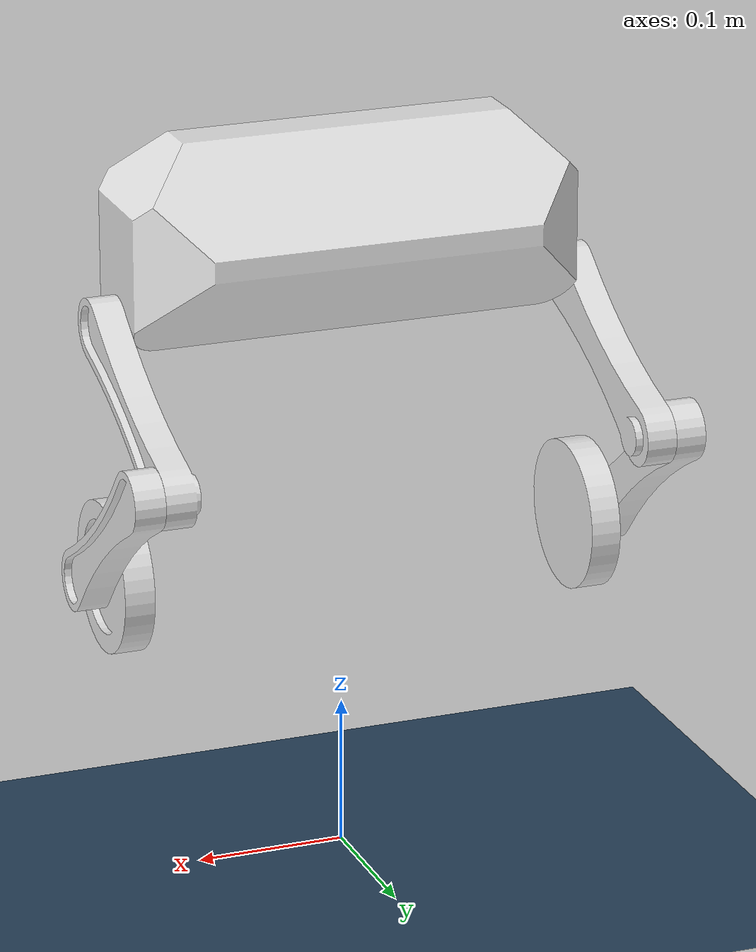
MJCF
<?xml version="1.0" encoding="utf-8"?>
<mujoco model="Bipedal">
  <compiler meshdir="." angle="radian"/>
  <option gravity="0 0 -9.81" timestep="0.002"/>
  <asset>
    <texture name="grid" type="2d" builtin="checker" rgb1=".1 .2 .3"
     rgb2=".2 .3 .4" width="300" height="300"/>
    <material name="grid" texture="grid" texrepeat="8 8" reflectance=".2"/>
    <mesh name="base_link" file="../meshes/base_link.STL"/>
    <mesh name="Link_11" file="../meshes/Link_11.STL"/>
    <mesh name="Link_12" file="../meshes/Link_12.STL"/>
    <mesh name="Wheel_1" file="../meshes/Wheel_1.STL"/>
    <mesh name="Link_21" file="../meshes/Link_21.STL"/>
    <mesh name="Link_22" file="../meshes/Link_22.STL"/>
    <mesh name="Wheel_2" file="../meshes/Wheel_2.STL"/>
  </asset>
  <worldbody>
    <light name="top" pos="0 0 1"/>
    <geom size="100 100 100" type="plane" material="grid"/>
    <!-- Spawn the bot 10 cm above the ground; only the wheels may contact it. -->
    <body name="base_link" pos="0 0 0.50" euler="1.5708 0 0">
      <freejoint name="root_freejoint"/>
      <inertial mass="3.63817086802306" pos="-1.64012214920461E-08 -0.0680186409737764 -1.39560096812374E-09" diaginertia="0.00737499625534443 0.0285025917062785 0.0281335662782507"/>
      <geom name="base_link_visual" type="mesh" mesh="base_link" contype="1" conaffinity="1" pos="0 0 0" euler="0 0 0" rgba="0.894117647058823 0.894117647058823 0.894117647058823 1"/>
      <body name="Link_11" pos="0.145 -0.11978 0" euler="0 0 0">
        <inertial mass="0.101778101785284" pos="0.0130297428005102 -0.0336883205650267 -0.0670081864961882" diaginertia="0.000348668430458723 0.000275943650696075 7.901918490929E-05"/>
        <geom name="Link_11_visual" type="mesh" mesh="Link_11" contype="0" conaffinity="0" pos="0 0 0" euler="0 0 0" rgba="0.894117647058823 0.894117647058823 0.894117647058823 1"/>
        <body name="Link_12" pos="0 -0.067377 -0.13402" euler="0 0 0">
          <inertial mass="0.101778101785284" pos="0.0330297428005104 -0.0471788439675457 0.0583022871068168" diaginertia="0.000348668430458728 0.000211913718802414 0.000143049116802955"/>
          <geom name="Link_12_visual" type="mesh" mesh="Link_12" contype="0" conaffinity="0" pos="0 0 0" euler="0 0 0" rgba="0.894117647058823 0.894117647058823 0.894117647058823 1"/>
          <body name="Wheel_1" pos="0.005 -0.094358 0.1166" euler="0 0 0">
            <joint name="Wheel_1" type="hinge" axis="1 0 0"/>
            <inertial mass="0.134990309333937" pos="0.00877272727272727 0 0" diaginertia="0.00018081798537202 9.41531143993749E-05 9.41531143993748E-05"/>
            <geom name="Wheel_1_visual" type="mesh" mesh="Wheel_1" contype="1" conaffinity="1" pos="0 0 0" euler="0 0 0" rgba="0.894117647058823 0.894117647058823 0.894117647058823 1"/>
          </body>
        </body>
      </body>
      <body name="Link_21" pos="-0.145 -0.11978 0" euler="0 0 0">
        <inertial mass="0.101778101785284" pos="-0.0130297428005103 -0.033688320565027 -0.0670081864961878" diaginertia="0.000348668430458732 0.000275943650696072 7.90191849093019E-05"/>
        <geom name="Link_21_visual" type="mesh" mesh="Link_21" contype="0" conaffinity="0" pos="0 0 0" euler="0 0 0" rgba="0.894117647058823 0.894117647058823 0.894117647058823 1"/>
        <body name="Link_22" pos="0 -0.067377 -0.13402" euler="0 0 0">
          <inertial mass="0.101778101785284" pos="-0.0330297428005104 -0.0471788439675451 0.0583022871068164" diaginertia="0.000348668430458713 0.000211913718802399 0.000143049116802956"/>
          <geom name="Link_22_visual" type="mesh" mesh="Link_22" contype="0" conaffinity="0" pos="0 0 0" euler="0 0 0" rgba="0.894117647058823 0.894117647058823 0.894117647058823 1"/>
          <body name="Wheel_2" pos="-0.005 -0.094358 0.1166" euler="0 0 0">
            <joint name="Wheel_2" type="hinge" axis="1 0 0"/>
            <inertial mass="0.134990309333937" pos="-0.00877272727272727 0 -2.22044604925031E-16" diaginertia="0.00018081798537202 9.41531143993749E-05 9.41531143993748E-05"/>
            <geom name="Wheel_2_visual" type="mesh" mesh="Wheel_2" contype="1" conaffinity="1" pos="0 0 0" euler="0 0 0" rgba="0.894117647058823 0.894117647058823 0.894117647058823 1"/>
          </body>
        </body>
      </body>
    </body>
  </worldbody>
  <actuator>
  </actuator>
</mujoco>
